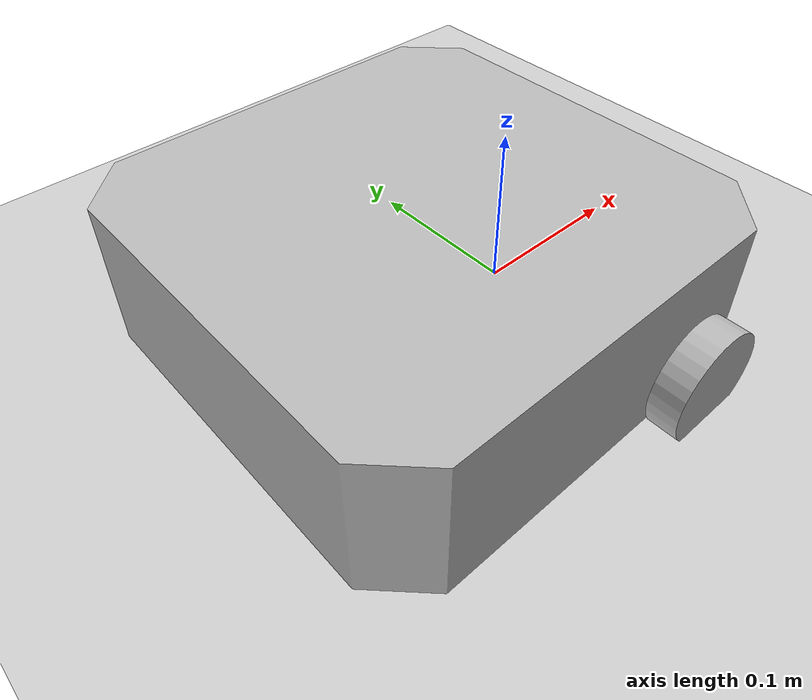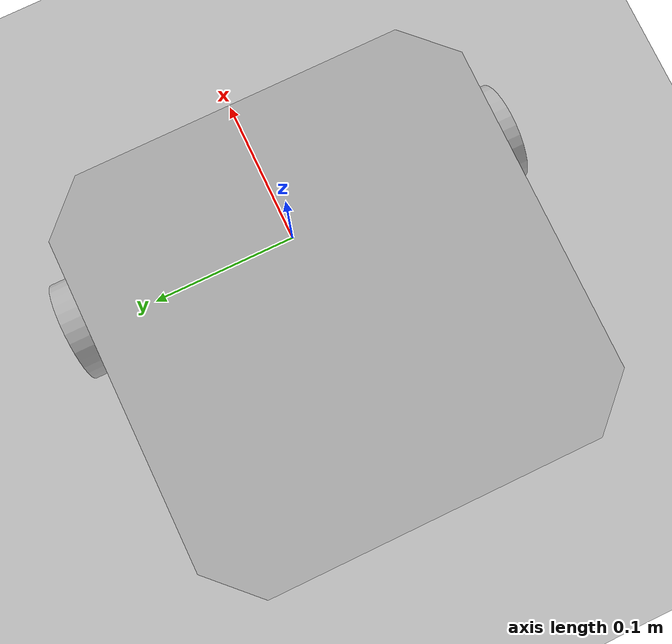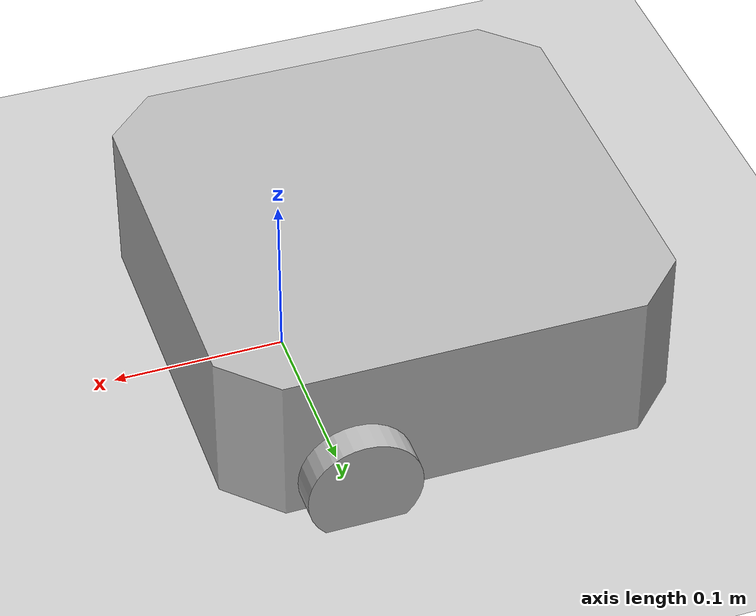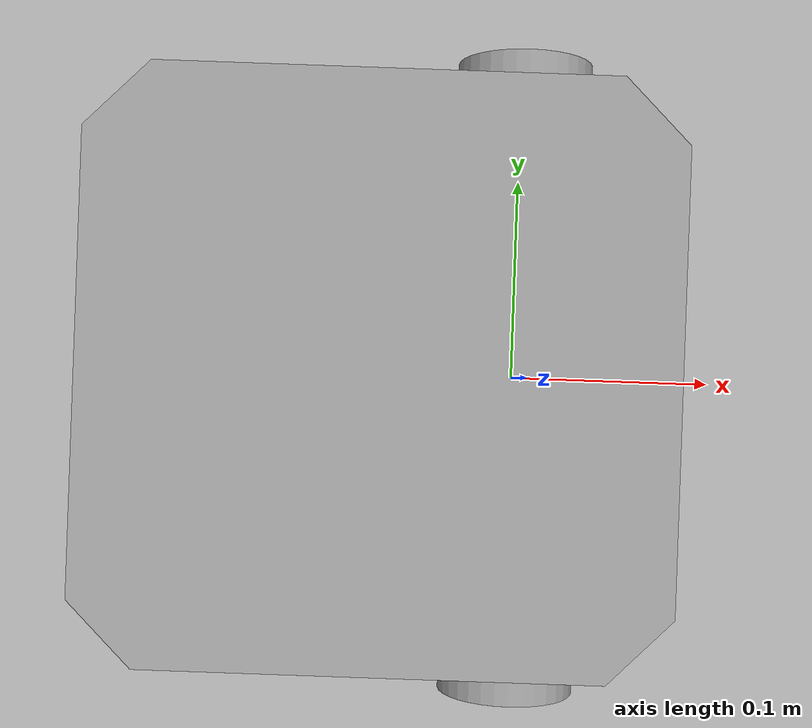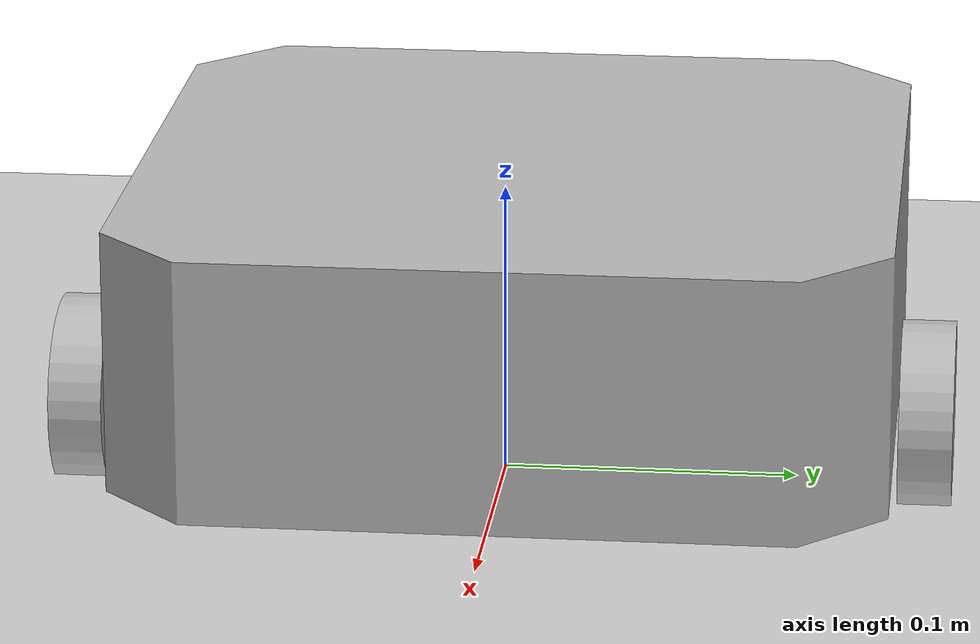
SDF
<?xml version="1.0"?>
<sdf version="1.6">
<physics type="ode">
    <!-- 0.004 s step ≈ 250 Hz -->
    <max_step_size>0.004</max_step_size>
    <real_time_update_rate>250</real_time_update_rate>
    </physics>
  <world name="custom_world">
    <!-- Include default ground plane and lighting -->
    <include>
      <uri>model://ground_plane</uri>
    </include>
    <include>
      <uri>model://sun</uri>
    </include>

    <!-- Custom line track model with modified dimensions -->
      <!-- Position the track slightly above the ground -->

    <!-- Include the detailed track model -->
    <include>
      <!-- Adjust the pose as needed to place your track -->
      <pose>0 0 0 0 0 0</pose>
      <uri>model://track2</uri>
    </include>
  </world>
</sdf>

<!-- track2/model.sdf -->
<sdf version="1.5">
  <model name="line_following_robot_template">
    <pose>0.0 0.0 0.0 0.0 0.0 0.0</pose>

    <link name="base_footprint"/>

    <link name="base_link">
      <inertial>
        <pose>-0.064 0 0.048 0 0 0</pose>
        <inertia>
          <ixx>0.001</ixx>
          <ixy>0.000</ixy>
          <ixz>0.000</ixz>
          <iyy>0.001</iyy>
          <iyz>0.000</iyz>
          <izz>0.001</izz>
        </inertia>
        <mass>1.0</mass>
      </inertial>

      <collision name="base_collision">
        <pose>-0.064 0 0.048 0 0 0</pose>
        <geometry>
          <box>
            <size>0.265 0.265 0.089</size>
          </box>
        </geometry>
      </collision>

      <visual name="base_visual">
        <pose>-0.064 0 0 0 0 0</pose>
        <geometry>
          <mesh>
            <!-- Updated mesh path for base -->
            <uri>model://line_following_robot/waffle_pi_base.dae</uri>
            <scale>0.001 0.001 0.001</scale>
          </mesh>
        </geometry>
      </visual>
    </link>

    <link name="imu_link">
      <sensor name="tb3_imu" type="imu">
        <always_on>true</always_on>
        <update_rate>200</update_rate>
        <imu>
          <angular_velocity>
            <x>
              <noise type="gaussian">
                <mean>0.0</mean>
                <stddev>2e-4</stddev>
              </noise>
            </x>
            <y>
              <noise type="gaussian">
                <mean>0.0</mean>
                <stddev>2e-4</stddev>
              </noise>
            </y>
            <z>
              <noise type="gaussian">
                <mean>0.0</mean>
                <stddev>2e-4</stddev>
              </noise>
            </z>
          </angular_velocity>
          <linear_acceleration>
            <x>
              <noise type="gaussian">
                <mean>0.0</mean>
                <stddev>1.7e-2</stddev>
              </noise>
            </x>
            <y>
              <noise type="gaussian">
                <mean>0.0</mean>
                <stddev>1.7e-2</stddev>
              </noise>
            </y>
            <z>
              <noise type="gaussian">
                <mean>0.0</mean>
                <stddev>1.7e-2</stddev>
              </noise>
            </z>
          </linear_acceleration>
        </imu>
        <plugin name="turtlebot3_imu" filename="libgazebo_ros_imu_sensor.so">
          <ros>
            <!-- Remapping remains unchanged -->
            <remapping>~/out:=imu</remapping>
          </ros>
        </plugin>
      </sensor>
    </link>

    <link name="wheel_left_link">
      <inertial>
        <pose>0.0 0.144 0.023 -1.57 0 0</pose>
        <inertia>
          <ixx>0.001</ixx>
          <ixy>0.000</ixy>
          <ixz>0.000</ixz>
          <iyy>0.001</iyy>
          <iyz>0.000</iyz>
          <izz>0.001</izz>
        </inertia>
        <mass>0.1</mass>
      </inertial>

      <collision name="wheel_left_collision">
        <pose>0.0 0.144 0.023 -1.57 0 0</pose>
        <geometry>
          <cylinder>
            <radius>0.033</radius>
            <length>0.018</length>
          </cylinder>
        </geometry>
        <surface>
          <friction>
            <ode>
              <mu>100000.0</mu>
              <mu2>100000.0</mu2>
              <fdir1>0 0 0</fdir1>
              <slip1>0.0</slip1>
              <slip2>0.0</slip2>
            </ode>
          </friction>
          <contact>
            <ode>
              <soft_cfm>0</soft_cfm>
              <soft_erp>0.2</soft_erp>
              <kp>1e+5</kp>
              <kd>1</kd>
              <max_vel>0.01</max_vel>
              <min_depth>0.001</min_depth>
            </ode>
          </contact>
        </surface>
      </collision>

      <visual name="wheel_left_visual">
        <pose>0.0 0.144 0.023 0 0 0</pose>
        <geometry>
          <mesh>
            <uri>model://line_following_robot/tire.dae</uri>
            <scale>0.001 0.001 0.001</scale>
          </mesh>
        </geometry>
      </visual>
    </link>

    <link name="wheel_right_link">
      <inertial>
        <pose>0.0 -0.144 0.023 -1.57 0 0</pose>
        <inertia>
          <ixx>0.001</ixx>
          <ixy>0.000</ixy>
          <ixz>0.000</ixz>
          <iyy>0.001</iyy>
          <iyz>0.000</iyz>
          <izz>0.001</izz>
        </inertia>
        <mass>0.1</mass>
      </inertial>

      <collision name="wheel_right_collision">
        <pose>0.0 -0.144 0.023 -1.57 0 0</pose>
        <geometry>
          <cylinder>
            <radius>0.033</radius>
            <length>0.018</length>
          </cylinder>
        </geometry>
        <surface>
          <friction>
            <ode>
              <mu>100000.0</mu>
              <mu2>100000.0</mu2>
              <fdir1>0 0 0</fdir1>
              <slip1>0.0</slip1>
              <slip2>0.0</slip2>
            </ode>
          </friction>
          <contact>
            <ode>
              <soft_cfm>0</soft_cfm>
              <soft_erp>0.2</soft_erp>
              <kp>1e+5</kp>
              <kd>1</kd>
              <max_vel>0.01</max_vel>
              <min_depth>0.001</min_depth>
            </ode>
          </contact>
        </surface>
      </collision>

      <visual name="wheel_right_visual">
        <pose>0.0 -0.144 0.023 0 0 0</pose>
        <geometry>
          <mesh>
            <uri>model://line_following_robot/tire.dae</uri>
            <scale>0.001 0.001 0.001</scale>
          </mesh>
        </geometry>
      </visual>
    </link>

    <link name='caster_back_right_link'>
      <pose>-0.177 -0.064 -0.004 0 0 0</pose>
      <inertial>
        <mass>0.001</mass>
        <inertia>
          <ixx>0.00001</ixx>
          <ixy>0.000</ixy>
          <ixz>0.000</ixz>
          <iyy>0.00001</iyy>
          <iyz>0.000</iyz>
          <izz>0.00001</izz>
        </inertia>
      </inertial>
      <collision name='collision'>
        <geometry>
          <sphere>
            <radius>0.005000</radius>
          </sphere>
        </geometry>
        <surface>
          <contact>
            <ode>
              <soft_cfm>0</soft_cfm>
              <soft_erp>0.2</soft_erp>
              <kp>1e+5</kp>
              <kd>1</kd>
              <max_vel>0.01</max_vel>
              <min_depth>0.001</min_depth>
            </ode>
          </contact>
        </surface>
      </collision>
    </link>

    <link name='caster_back_left_link'>
      <pose>-0.177 0.064 -0.004 0 0 0</pose>
      <inertial>
        <mass>0.001</mass>
        <inertia>
          <ixx>0.00001</ixx>
          <ixy>0.000</ixy>
          <ixz>0.000</ixz>
          <iyy>0.00001</iyy>
          <iyz>0.000</iyz>
          <izz>0.00001</izz>
        </inertia>
      </inertial>
      <collision name='collision'>
        <geometry>
          <sphere>
            <radius>0.005000</radius>
          </sphere>
        </geometry>
        <surface>
          <contact>
            <ode>
              <soft_cfm>0</soft_cfm>
              <soft_erp>0.2</soft_erp>
              <kp>1e+5</kp>
              <kd>1</kd>
              <max_vel>0.01</max_vel>
              <min_depth>0.001</min_depth>
            </ode>
          </contact>
        </surface>
      </collision>
    </link>

    <link name="camera_link"/>

    <link name="camera_rgb_optical_frame">
      <inertial>
        <pose>0.076 0.0 0.093 0 0 0</pose>
        <inertia>
          <ixx>0.001</ixx>
          <ixy>0.000</ixy>
          <ixz>0.000</ixz>
          <iyy>0.001</iyy>
          <iyz>0.000</iyz>
          <izz>0.001</izz>
        </inertia>
        <mass>0.035</mass>
      </inertial>
      <pose>0.05 0 0.25 0 1.0 0</pose>
      <sensor name="camera" type="camera">
        <always_on>true</always_on>
        <visualize>true</visualize>
        <update_rate>30</update_rate>
        <camera name="picam">
          <horizontal_fov>1.085595</horizontal_fov>
          <image>
              <width>640</width>
              <height>480</height>
              <format>R8G8B8</format>
          </image>
          <clip>
              <near>0.03</near>
              <far>100</far>
          </clip>
          <noise>
            <type>gaussian</type>
            <mean>0.0</mean>
            <stddev>0.007</stddev>
          </noise>
        </camera>
        <!-- Removed the invalid namespace tag -->
        <plugin name="camera_driver" filename="libgazebo_ros_camera.so">
          <ros>
            <remapping>image_raw:=camera/image_raw</remapping>
            <remapping>camera_info:=camera/camera_info</remapping>
          </ros>
        </plugin>
      </sensor>
    </link>

    <joint name="base_joint" type="fixed">
      <parent>base_footprint</parent>
      <child>base_link</child>
      <pose>0.0 0.0 0.010 0 0 0</pose>
    </joint>

    <joint name="wheel_left_joint" type="revolute">
      <parent>base_link</parent>
      <child>wheel_left_link</child>
      <pose>0.0 0.144 0.023 -1.57 0 0</pose>
      <axis>
        <xyz>0 0 1</xyz>
      </axis>
    </joint>

    <joint name="wheel_right_joint" type="revolute">
      <parent>base_link</parent>
      <child>wheel_right_link</child>
      <pose>0.0 -0.144 0.023 -1.57 0 0</pose>
      <axis>
        <xyz>0 0 1</xyz>
      </axis>
    </joint>

    <joint name='caster_back_right_joint' type='ball'>
      <parent>base_link</parent>
      <child>caster_back_right_link</child>
    </joint>

    <joint name='caster_back_left_joint' type='ball'>
      <parent>base_link</parent>
      <child>caster_back_left_link</child>
    </joint>

    <joint name="camera_joint" type="fixed">
      <parent>base_link</parent>
      <child>camera_link</child>
      <pose>0.073 -0.011 0.084 0 5.6 0</pose>
      <axis>
        <xyz>0 0 1</xyz>
      </axis>
    </joint>

    <joint name="camera_rgb_joint" type="fixed">
      <parent>camera_link</parent>
      <child>camera_rgb_optical_frame</child>
      <pose>0.003 0.011 0.009 0 5.6 0</pose>
      <axis>
        <xyz>0 0 1</xyz>
      </axis>
    </joint>

    <plugin name="turtlebot3_diff_drive" filename="libgazebo_ros_diff_drive.so">
      <ros>
      </ros>
      <update_rate>30</update_rate>
      <left_joint>wheel_left_joint</left_joint>
      <right_joint>wheel_right_joint</right_joint>
      <wheel_separation>0.287</wheel_separation>
      <wheel_diameter>0.066</wheel_diameter>
      <max_wheel_torque>20</max_wheel_torque>
      <max_wheel_acceleration>1.0</max_wheel_acceleration>
      <command_topic>cmd_vel</command_topic>
      <publish_odom>true</publish_odom>
      <publish_odom_tf>true</publish_odom_tf>
      <publish_wheel_tf>false</publish_wheel_tf>
      <odometry_topic>odom</odometry_topic>
      <odometry_frame>odom</odometry_frame>
      <robot_base_frame>base_footprint</robot_base_frame>
    </plugin>

    <plugin name="turtlebot3_joint_state" filename="libgazebo_ros_joint_state_publisher.so">
      <ros>
        <remapping>~/out:=joint_states</remapping>
      </ros>
      <update_rate>30</update_rate>
      <joint_name>wheel_left_joint</joint_name>
      <joint_name>wheel_right_joint</joint_name>
    </plugin>

  </model>
</sdf>
